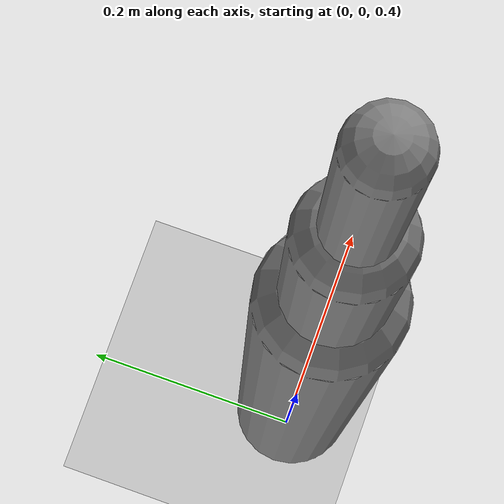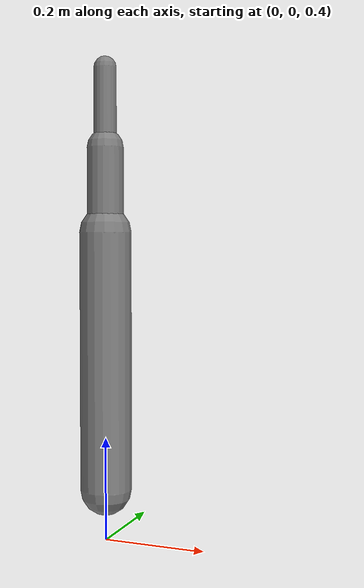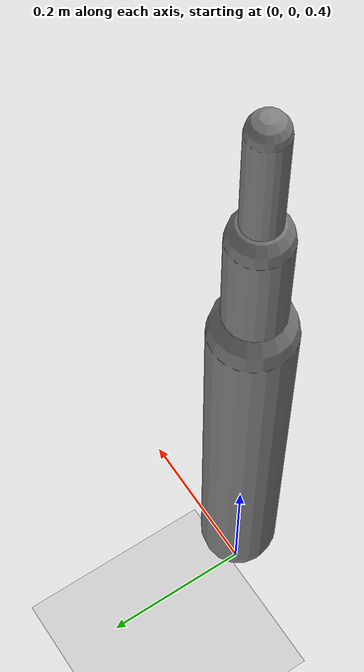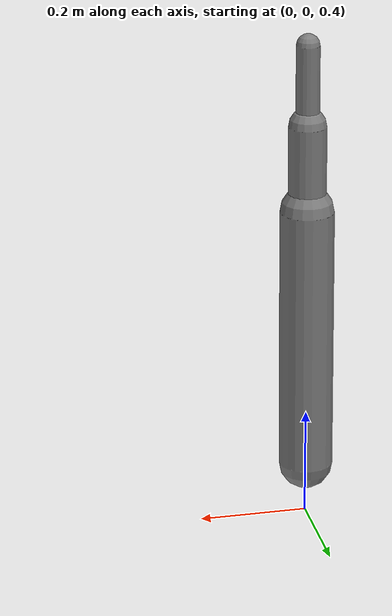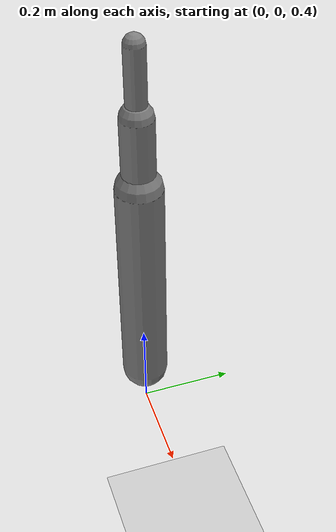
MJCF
<?xml version='1.0' encoding='UTF-8'?>
<mujoco model="RobotModel">
  <option gravity="0 0 -9.81" timestep="0.002" solver="CG" iterations="500" integrator="Euler"/>
  <worldbody>
    <geom name="Floor" type="plane" size="10 10 0.1" pos="0 0 0" rgba="0.8 0.8 0.8 1"/>
    <body name="Limb0" pos="0 0 0.5">
      <geom type="capsule" fromto="0 0 0 0 0 0.5" size="0.05" density="1000" contype="0" conaffinity="0"/>
      <body name="Limb0_e440ddd5" pos="0 0 0.5">
        <geom type="capsule" fromto="0 0 0 0 0 0.12272057464905795" size="0.017373708435743228" density="800" contype="0" conaffinity="0"/>
        <body name="Limb1_e440ddd5" pos="0 0 0.12272057464905795">
          <geom type="capsule" fromto="0 0 0 0 0 0.19038307110789854" size="0.02170721323562618" density="800" contype="0" conaffinity="0"/>
          <joint name="Joint_Limb0_e440ddd5_Limb1_e440ddd5_0" type="hinge" axis="1 0 0" range="-60 60"/>
        </body>
        <joint name="Joint_Limb0_Limb0_e440ddd5_0" type="hinge" axis="1 0 0" range="-60 60"/>
      </body>
      <body name="Limb2_e440ddd5" pos="0 0 0.5">
        <geom type="capsule" fromto="0 0 0 0 0 0.16216709274586089" size="0.03504784363417277" density="800" contype="0" conaffinity="0"/>
        <joint name="Joint_Limb0_Limb2_e440ddd5_0" type="hinge" axis="1 0 0" range="-60 60"/>
      </body>
    </body>
  </worldbody>
  <actuator>
    <position name="position_Actuator_Joint_Limb0_Limb0_e440ddd5_0" joint="Joint_Limb0_Limb0_e440ddd5_0" gear="1.0"/>
    <position name="position_Actuator_Joint_Limb0_e440ddd5_Limb1_e440ddd5_0" joint="Joint_Limb0_e440ddd5_Limb1_e440ddd5_0" gear="1.0"/>
    <position name="position_Actuator_Joint_Limb0_Limb2_e440ddd5_0" joint="Joint_Limb0_Limb2_e440ddd5_0" gear="1.0"/>
  </actuator>
</mujoco>
